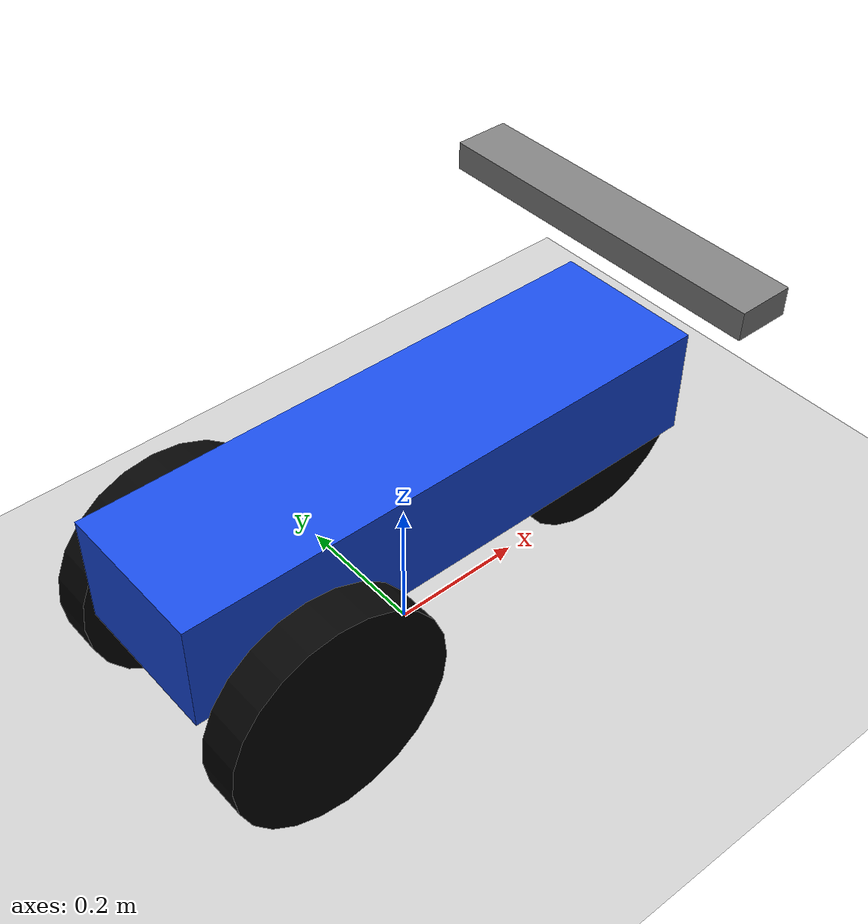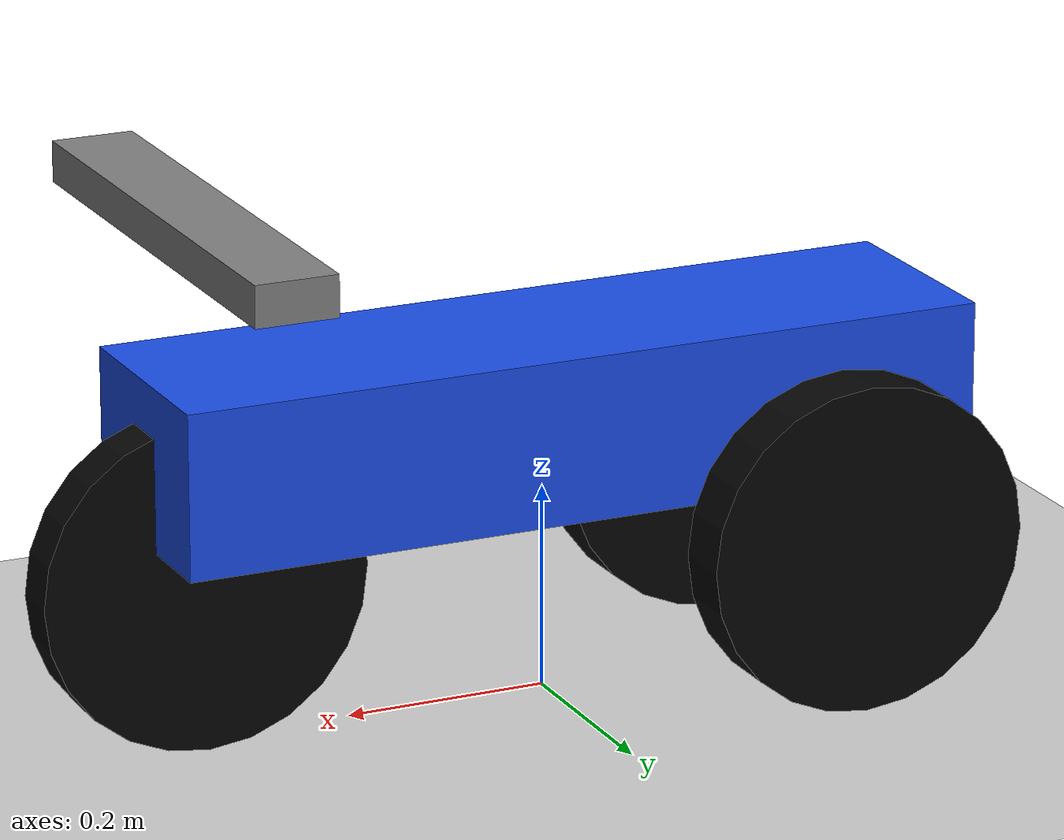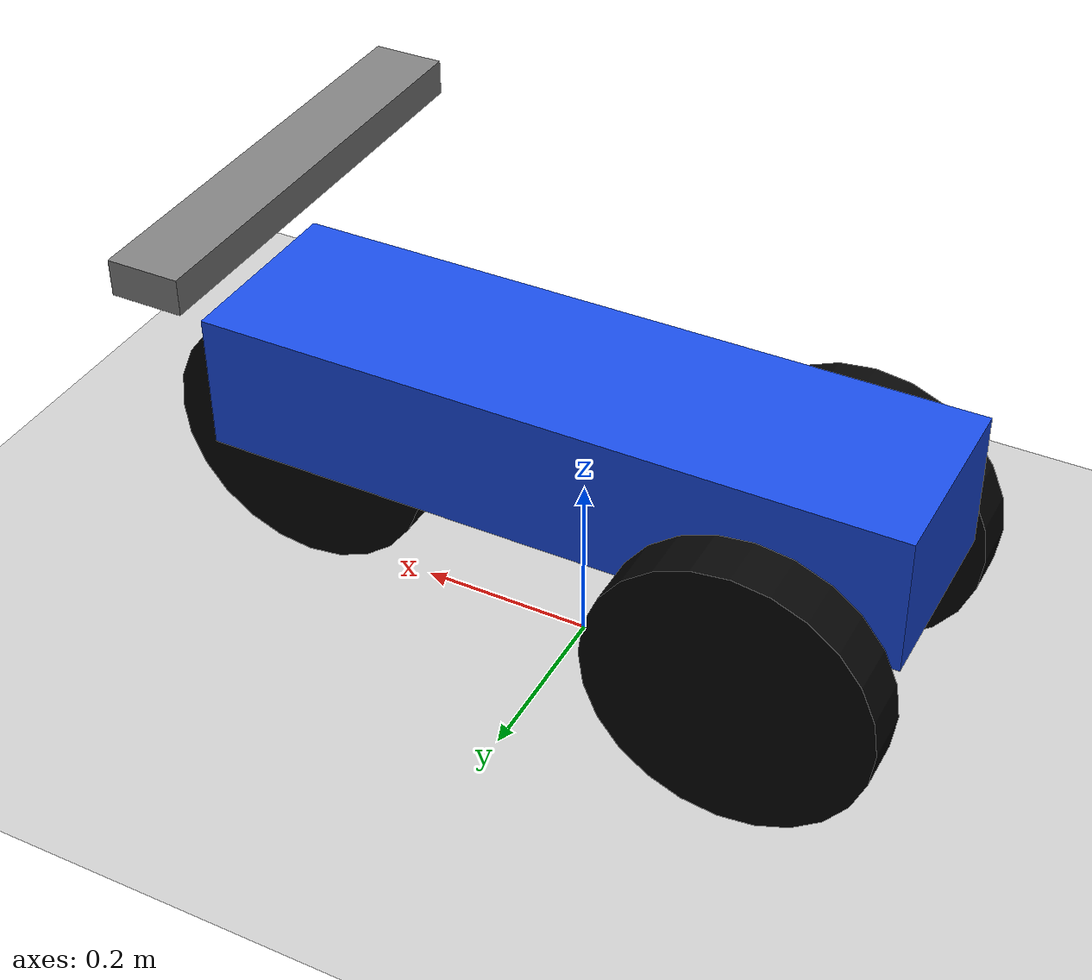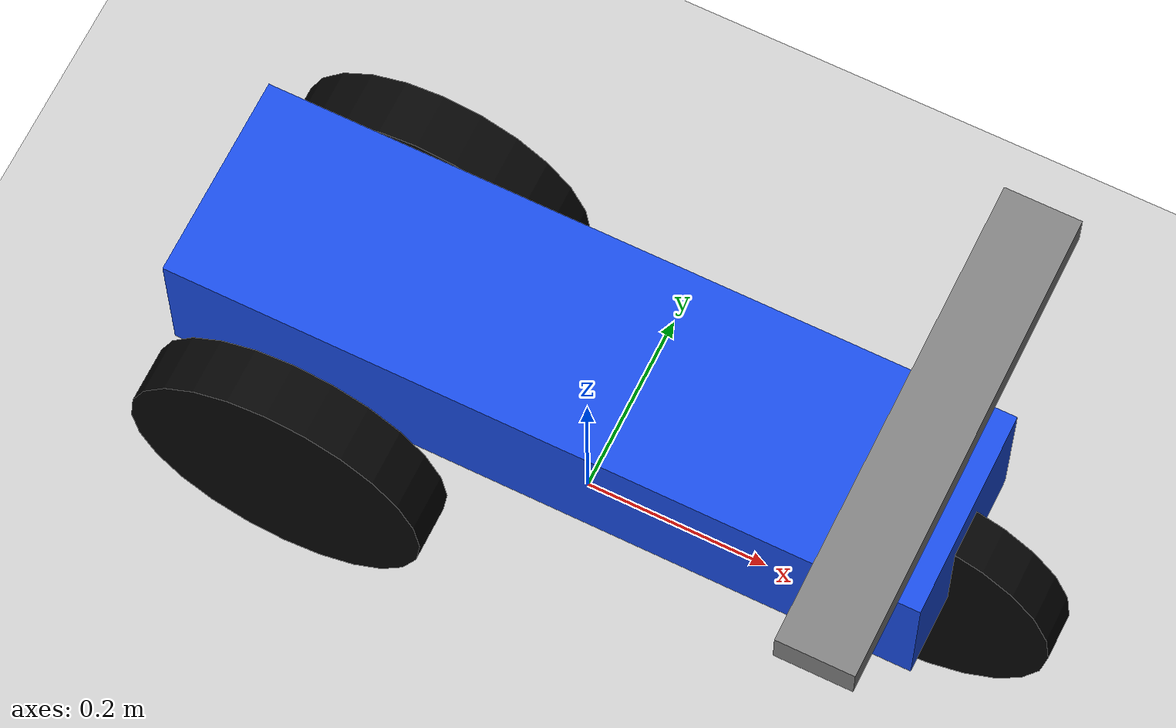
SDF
<?xml version="1.0" ?>
<sdf version="1.9">
  <world name="default">

    <plugin
      filename="gz-sim-physics-system"
      name="gz::sim::systems::Physics"/>

    <plugin
      filename="gz-sim-scene-broadcaster-system"
      name="gz::sim::systems::SceneBroadcaster"/>

    <light name="sun" type="directional">
      <pose>0 0 10 0 0 0</pose>
      <diffuse>0.8 0.8 0.8 1</diffuse>
      <specular>0.2 0.2 0.2 1</specular>
      <direction>-0.5 0.1 -0.9</direction>
    </light>

    <model name="ground_plane">
      <static>true</static>
      <link name="link">
        <collision name="collision">
          <geometry>
            <plane>
              <normal>0 0 1</normal>
              <size>100 100</size>
            </plane>
          </geometry>
        </collision>
        <visual name="visual">
          <geometry>
            <plane>
              <normal>0 0 1</normal>
              <size>100 100</size>
            </plane>
          </geometry>
        </visual>
      </link>
    </model>

    <model name="simple_motorcycle">
      <pose>0 0 0 0 0 0</pose>

      <link name="base_link">
        <pose>0 0 0.28 0 0 0</pose>

        <inertial>
          <mass>8.0</mass>
          <inertia>
            <ixx>0.2</ixx>
            <iyy>0.5</iyy>
            <izz>0.5</izz>
          </inertia>
        </inertial>

        <collision name="body_collision">
          <geometry>
            <box>
              <size>0.8 0.22 0.16</size>
            </box>
          </geometry>
        </collision>

        <visual name="body_visual">
          <geometry>
            <box>
              <size>0.8 0.22 0.16</size>
            </box>
          </geometry>
          <material>
            <diffuse>0.1 0.3 0.9 1</diffuse>
          </material>
        </visual>

        <visual name="handle_visual">
          <pose>0.35 0 0.22 0 0 0</pose>
          <geometry>
            <box>
              <size>0.08 0.5 0.04</size>
            </box>
          </geometry>
          <material>
            <diffuse>0.5 0.5 0.5 1</diffuse>
          </material>
        </visual>
      </link>

      <link name="left_wheel">
        <pose>-0.25 0.16 0.16 0 0 0</pose>

        <inertial>
          <mass>1.0</mass>
          <inertia>
            <ixx>0.01</ixx>
            <iyy>0.01</iyy>
            <izz>0.01</izz>
          </inertia>
        </inertial>

        <collision name="collision">
          <pose>0 0 0 1.5708 0 0</pose>
          <geometry>
            <cylinder>
              <radius>0.16</radius>
              <length>0.06</length>
            </cylinder>
          </geometry>
        </collision>

        <visual name="visual">
          <pose>0 0 0 1.5708 0 0</pose>
          <geometry>
            <cylinder>
              <radius>0.16</radius>
              <length>0.06</length>
            </cylinder>
          </geometry>
          <material>
            <diffuse>0.02 0.02 0.02 1</diffuse>
          </material>
        </visual>
      </link>

      <link name="right_wheel">
        <pose>-0.25 -0.16 0.16 0 0 0</pose>

        <inertial>
          <mass>1.0</mass>
          <inertia>
            <ixx>0.01</ixx>
            <iyy>0.01</iyy>
            <izz>0.01</izz>
          </inertia>
        </inertial>

        <collision name="collision">
          <pose>0 0 0 1.5708 0 0</pose>
          <geometry>
            <cylinder>
              <radius>0.16</radius>
              <length>0.06</length>
            </cylinder>
          </geometry>
        </collision>

        <visual name="visual">
          <pose>0 0 0 1.5708 0 0</pose>
          <geometry>
            <cylinder>
              <radius>0.16</radius>
              <length>0.06</length>
            </cylinder>
          </geometry>
          <material>
            <diffuse>0.02 0.02 0.02 1</diffuse>
          </material>
        </visual>
      </link>

      <link name="front_wheel">
        <pose>0.35 0 0.16 0 0 0</pose>

        <inertial>
          <mass>0.5</mass>
          <inertia>
            <ixx>0.005</ixx>
            <iyy>0.005</iyy>
            <izz>0.005</izz>
          </inertia>
        </inertial>

        <collision name="collision">
          <pose>0 0 0 1.5708 0 0</pose>
          <geometry>
            <cylinder>
              <radius>0.16</radius>
              <length>0.05</length>
            </cylinder>
          </geometry>
        </collision>

        <visual name="visual">
          <pose>0 0 0 1.5708 0 0</pose>
          <geometry>
            <cylinder>
              <radius>0.16</radius>
              <length>0.05</length>
            </cylinder>
          </geometry>
          <material>
            <diffuse>0.02 0.02 0.02 1</diffuse>
          </material>
        </visual>
      </link>

      <joint name="left_wheel_joint" type="revolute">
        <parent>base_link</parent>
        <child>left_wheel</child>
        <axis>
          <xyz>0 1 0</xyz>
        </axis>
      </joint>

      <joint name="right_wheel_joint" type="revolute">
        <parent>base_link</parent>
        <child>right_wheel</child>
        <axis>
          <xyz>0 1 0</xyz>
        </axis>
      </joint>

      <joint name="front_wheel_joint" type="fixed">
        <parent>base_link</parent>
        <child>front_wheel</child>
      </joint>

      <plugin
        filename="gz-sim-diff-drive-system"
        name="gz::sim::systems::DiffDrive">
        <left_joint>left_wheel_joint</left_joint>
        <right_joint>right_wheel_joint</right_joint>
        <wheel_separation>0.32</wheel_separation>
        <wheel_radius>0.16</wheel_radius>
        <topic>cmd_vel</topic>
        <odom_topic>odom</odom_topic>
        <frame_id>odom</frame_id>
        <child_frame_id>base_link</child_frame_id>
      </plugin>

    </model>
  </world>
</sdf>
